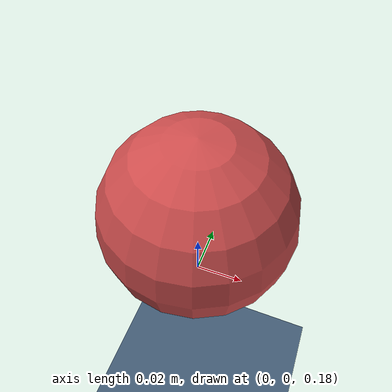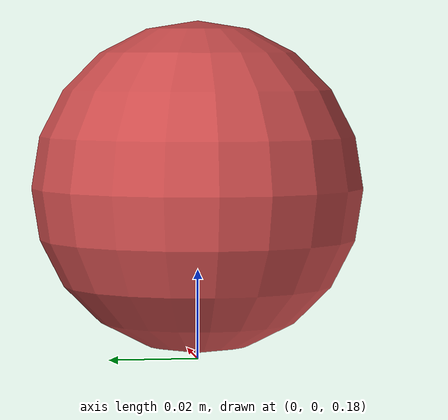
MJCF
<mujoco model="tap_001">
  <option timestep="0.001" gravity="0 0 -9.81"/>

  <visual>
    <headlight ambient="0.5 0.5 0.5"/>
  </visual>

  <asset>
    <texture name="grid" type="2d" builtin="checker" width="512" height="512" rgb1="0.2 0.3 0.4" rgb2="0.3 0.4 0.5"/>
    <material name="grid" texture="grid" texrepeat="1 1" reflectance="0.2"/>
    <material name="finger" rgba="0.8 0.3 0.3 1.0"/>
  </asset>

  <worldbody>
    <!-- Ground plane -->
    <geom name="floor" type="plane" size="2 2 0.1" material="grid"
          condim="6" friction="0.647949241311498 0.005 0.0001" solref="0.02 1.3715648615140819"/>

    <!-- Sphere -->
    <body name="fingertip" pos="0 0 0.21847953952414248">
      <freejoint/>
      <geom name="finger" type="sphere" size="0.03706380468242942" mass="0.03302825208099705" material="finger"
            condim="6" friction="0.647949241311498 0.005 0.0001" solref="0.02 1.3715648615140819"/>
      <site name="contact_site" pos="0 0 0" size="0.001"/>
    </body>
  </worldbody>

  <sensor>
    <touch name="finger_touch" site="contact_site"/>
    <framepos name="finger_pos" objtype="site" objname="contact_site"/>
    <framequat name="finger_quat" objtype="site" objname="contact_site"/>
    <framelinvel name="finger_vel" objtype="site" objname="contact_site"/>
  </sensor>
</mujoco>
